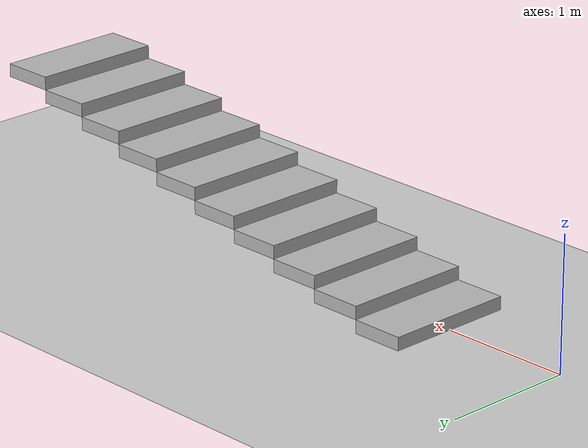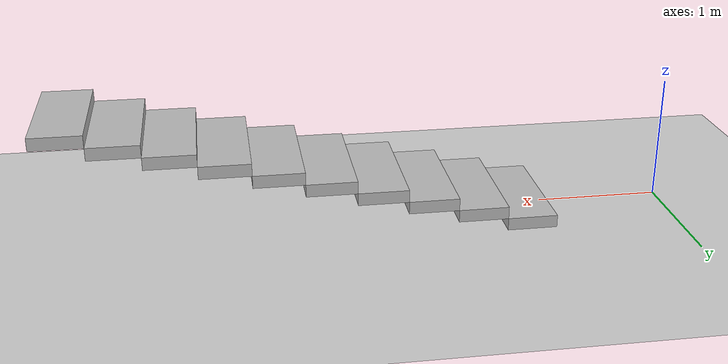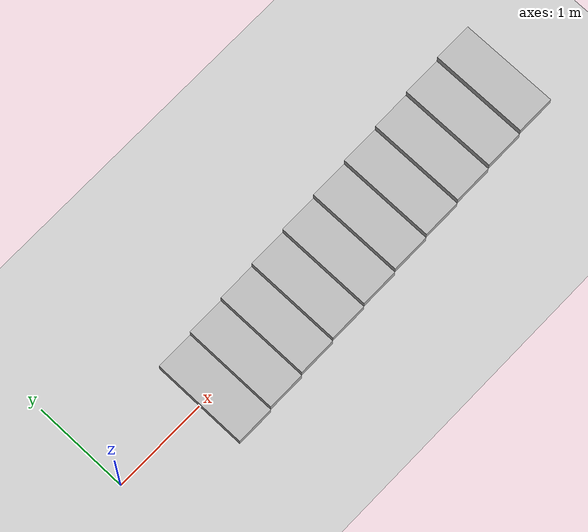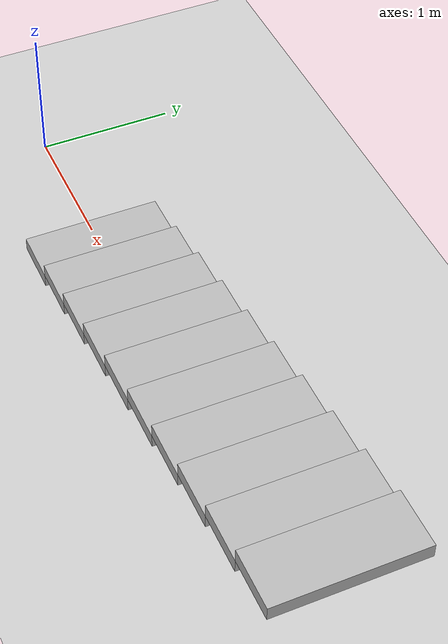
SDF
<?xml version="1.0" ?>
<sdf version="1.7">
  <world name="compton">
    <gravity>0 0 -9.81</gravity>

    <physics type="bullet" name="bullet">
      <max_step_size>0.001</max_step_size>
      <real_time_factor>1.0</real_time_factor>
    </physics>

    <light type="directional" name="sun">
      <cast_shadows>true</cast_shadows>
      <pose>0 0 10 0 0 0</pose>
      <diffuse>1 1 1 1</diffuse>
      <specular>0.5 0.5 0.5 1</specular>
      <attenuation>
        <range>1000</range>
        <constant>0.9</constant>
        <linear>0.01</linear>
        <quadratic>0.001</quadratic>
      </attenuation>
      <direction>-0.5 0.1 -0.9</direction>
    </light>

    <model name="ground_plane">
      <static>true</static>
      <link name="ground_link">
        <collision name="ground_collision">
          <geometry>
            <plane>
              <normal>0 0 1</normal>
              <size>100 100</size>
            </plane>
          </geometry>
        </collision>
        <visual name="ground_visual">
          <geometry>
            <plane>
              <normal>0 0 1</normal>
              <size>100 100</size>
            </plane>
          </geometry>
          <material>
            <script>
              <uri>file://media/materials/scripts/gazebo.material</uri>
              <name>Gazebo/Grey</name>
            </script>
          </material>
        </visual>
      </link>
    </model>

    <model name="staircase">
      <static>true</static>
      <!-- 10 steps, each 0.1 m high (0.1 m thick), 0.4 m long along +x, 1.0 m wide along y -->
      <!-- Step i spans x in [1 + (i-1)*0.4, 1 + i*0.4], top height i*0.1 -->
      <pose>0 0 0 0 0 0</pose>
      <link name="step_01">
        <pose>1.2 0 0.05 0 0 0</pose>
        <collision name="collision">
          <geometry>
            <box>
              <size>0.4 1.0 0.1</size>
            </box>
          </geometry>
        </collision>
        <visual name="visual">
          <geometry>
            <box>
              <size>0.4 1.0 0.1</size>
            </box>
          </geometry>
        </visual>
      </link>
      <link name="step_02">
        <pose>1.6 0 0.15 0 0 0</pose>
        <collision name="collision">
          <geometry>
            <box>
              <size>0.4 1.0 0.1</size>
            </box>
          </geometry>
        </collision>
        <visual name="visual">
          <geometry>
            <box>
              <size>0.4 1.0 0.1</size>
            </box>
          </geometry>
        </visual>
      </link>
      <link name="step_03">
        <pose>2.0 0 0.25 0 0 0</pose>
        <collision name="collision">
          <geometry>
            <box>
              <size>0.4 1.0 0.1</size>
            </box>
          </geometry>
        </collision>
        <visual name="visual">
          <geometry>
            <box>
              <size>0.4 1.0 0.1</size>
            </box>
          </geometry>
        </visual>
      </link>
      <link name="step_04">
        <pose>2.4 0 0.35 0 0 0</pose>
        <collision name="collision">
          <geometry>
            <box>
              <size>0.4 1.0 0.1</size>
            </box>
          </geometry>
        </collision>
        <visual name="visual">
          <geometry>
            <box>
              <size>0.4 1.0 0.1</size>
            </box>
          </geometry>
        </visual>
      </link>
      <link name="step_05">
        <pose>2.8 0 0.45 0 0 0</pose>
        <collision name="collision">
          <geometry>
            <box>
              <size>0.4 1.0 0.1</size>
            </box>
          </geometry>
        </collision>
        <visual name="visual">
          <geometry>
            <box>
              <size>0.4 1.0 0.1</size>
            </box>
          </geometry>
        </visual>
      </link>
      <link name="step_06">
        <pose>3.2 0 0.55 0 0 0</pose>
        <collision name="collision">
          <geometry>
            <box>
              <size>0.4 1.0 0.1</size>
            </box>
          </geometry>
        </collision>
        <visual name="visual">
          <geometry>
            <box>
              <size>0.4 1.0 0.1</size>
            </box>
          </geometry>
        </visual>
      </link>
      <link name="step_07">
        <pose>3.6 0 0.65 0 0 0</pose>
        <collision name="collision">
          <geometry>
            <box>
              <size>0.4 1.0 0.1</size>
            </box>
          </geometry>
        </collision>
        <visual name="visual">
          <geometry>
            <box>
              <size>0.4 1.0 0.1</size>
            </box>
          </geometry>
        </visual>
      </link>
      <link name="step_08">
        <pose>4.0 0 0.75 0 0 0</pose>
        <collision name="collision">
          <geometry>
            <box>
              <size>0.4 1.0 0.1</size>
            </box>
          </geometry>
        </collision>
        <visual name="visual">
          <geometry>
            <box>
              <size>0.4 1.0 0.1</size>
            </box>
          </geometry>
        </visual>
      </link>
      <link name="step_09">
        <pose>4.4 0 0.85 0 0 0</pose>
        <collision name="collision">
          <geometry>
            <box>
              <size>0.4 1.0 0.1</size>
            </box>
          </geometry>
        </collision>
        <visual name="visual">
          <geometry>
            <box>
              <size>0.4 1.0 0.1</size>
            </box>
          </geometry>
        </visual>
      </link>
      <link name="step_10">
        <pose>4.8 0 0.95 0 0 0</pose>
        <collision name="collision">
          <geometry>
            <box>
              <size>0.4 1.0 0.1</size>
            </box>
          </geometry>
        </collision>
        <visual name="visual">
          <geometry>
            <box>
              <size>0.4 1.0 0.1</size>
            </box>
          </geometry>
        </visual>
      </link>
    </model>
  </world>
</sdf>
